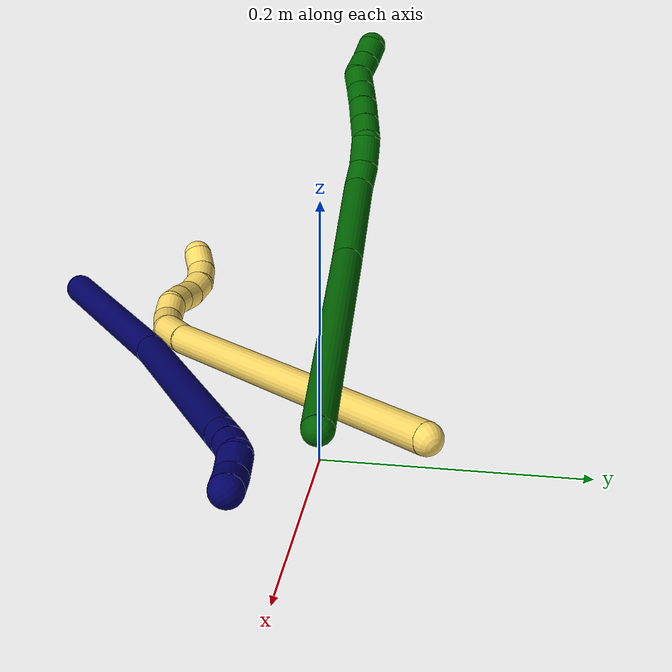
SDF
<sdf version="1.7">
 <world name="default">
  <model name="photoneo_s_sensor">
   <static>1</static>
   <pose>0 0 2 1.57079 1.57079 3.14159</pose>
   <link name="link">
    <inertial><mass>0.1</mass></inertial>
    <sensor name="sensor" type="depth">
     <update_rate>30</update_rate>
     <camera>
      <horizontal_fov>1.22</horizontal_fov>
      <image><width>1920</width><height>1200</height><format>B8G8R8</format></image>
      <clip><near>0.1</near><far>4</far></clip>
      <depth_camera><output>points</output></depth_camera>
     </camera>
     <plugin name="camera_plugin" filename="libgazebo_ros_depth_camera.so">
      <baseline>0.2</baseline>
      <alwaysOn>1</alwaysOn>
      <updateRate>0.0</updateRate>
      <cameraName>camera_ir</cameraName>
      <imageTopicName>/camera/color/image_raw</imageTopicName>
      <cameraInfoTopicName>/camera/color/camera_info</cameraInfoTopicName>
      <depthImageTopicName>/camera/depth/image_raw</depthImageTopicName>
      <depthImageCameraInfoTopicName>/camera/depth/camera_info</depthImageCameraInfoTopicName>
      <pointCloudTopicName>/camera/depth/points</pointCloudTopicName>
      <frameName>fr_optical</frameName>
      <pointCloudCutoff>0.1</pointCloudCutoff>
      <pointCloudCutoffMax>2.0</pointCloudCutoffMax>
      <distortionK1>0</distortionK1>
      <distortionK2>0</distortionK2>
      <distortionK3>0</distortionK3>
      <distortionT1>0</distortionT1>
      <distortionT2>0</distortionT2>
      <CxPrime>0</CxPrime>
      <Cx>0</Cx>
      <Cy>0</Cy>
      <focalLength>0</focalLength>
      <hackBaseline>0</hackBaseline>
     </plugin>
    </sensor>
   </link>
  </model>
  <model name="bin">
   <static>1</static>
   <link name="bottom">
    <collision name="collision-bottom">
     <pose>0 0 -0.01 0 -0 0</pose>
     <geometry><box><size>0.8 0.6 0.02</size></box></geometry>
     <surface>
      <friction><ode><mu>100</mu><mu2>100</mu2></ode></friction>
      <contact><collide_bitmask>65535</collide_bitmask></contact>
     </surface>
    </collision>
   </link>
   <link name="west_wall">
    <collision name="collision-west_wall">
     <pose>-0.41 0 0.1 0 -0 0</pose>
     <geometry><box><size>0.02 0.6 0.2</size></box></geometry>
     <surface>
      <friction><ode><mu>100</mu><mu2>100</mu2></ode></friction>
      <contact><collide_bitmask>65535</collide_bitmask></contact>
     </surface>
    </collision>
   </link>
   <link name="east_wall">
    <collision name="collision-east_wall">
     <pose>0.41 0 0.1 0 -0 0</pose>
     <geometry><box><size>0.02 0.6 0.2</size></box></geometry>
     <surface>
      <friction><ode><mu>100</mu><mu2>100</mu2></ode></friction>
      <contact><collide_bitmask>65535</collide_bitmask></contact>
     </surface>
    </collision>
   </link>
   <link name="south_wall">
    <collision name="collision-south_wall">
     <pose>0 -0.31 0.1 0 -0 0</pose>
     <geometry><box><size>0.8 0.02 0.2</size></box></geometry>
     <surface>
      <friction><ode><mu>100</mu><mu2>100</mu2></ode></friction>
      <contact><collide_bitmask>65535</collide_bitmask></contact>
     </surface>
    </collision>
   </link>
   <link name="north_wall">
    <collision name="collision-north_wall">
     <pose>0 0.31 0.1 0 -0 0</pose>
     <geometry><box><size>0.8 0.02 0.2</size></box></geometry>
     <surface>
      <friction><ode><mu>100</mu><mu2>100</mu2></ode></friction>
      <contact><collide_bitmask>65535</collide_bitmask></contact>
     </surface>
    </collision>
   </link>
  </model>
  <model name="5">
   <static>0</static>
   <link name="5">
    <collision name="collision-cylinder-e_1_1_4">
     <pose>-0.041084 -0.036061 0.147326 0.240053 -0.26452 -0.032087</pose>
     <geometry><cylinder><radius>0.0125</radius><length>0.314282</length></cylinder></geometry>
     <surface>
      <friction><ode><mu>1.16</mu><mu2>1.16</mu2><slip1>0</slip1><slip2>0</slip2></ode></friction>
      <contact><ode><kp>1e+06</kp><kd>1</kd><max_vel>0</max_vel><min_depth>0.001</min_depth></ode></contact>
     </surface>
    </collision>
    <visual name="visual-cylinder-e_1_1_4">
     <pose>-0.041084 -0.036061 0.147326 0.240053 -0.26452 -0.032087</pose>
     <geometry><cylinder><radius>0.0125</radius><length>0.314282</length></cylinder></geometry>
     <material><ambient>1 0.858824 0.4 1</ambient></material>
    </visual>
    <collision name="collision-cylinder-e_2_4_5">
     <pose>-0.087092 -0.073641 0.310829 0.093565 -0.294264 -0.013876</pose>
     <geometry><cylinder><radius>0.0125</radius><length>0.033956</length></cylinder></geometry>
     <surface>
      <friction><ode><mu>1.16</mu><mu2>1.16</mu2><slip1>0</slip1><slip2>0</slip2></ode></friction>
      <contact><ode><kp>1e+06</kp><kd>1</kd><max_vel>0</max_vel><min_depth>0.001</min_depth></ode></contact>
     </surface>
    </collision>
    <visual name="visual-cylinder-e_2_4_5">
     <pose>-0.087092 -0.073641 0.310829 0.093565 -0.294264 -0.013876</pose>
     <geometry><cylinder><radius>0.0125</radius><length>0.033956</length></cylinder></geometry>
     <material><ambient>1 0.858824 0.4 1</ambient></material>
    </visual>
    <collision name="collision-cylinder-e_3_5_6">
     <pose>-0.097602 -0.071286 0.338679 -0.32034 -0.426302 0.069905</pose>
     <geometry><cylinder><radius>0.0125</radius><length>0.027016</length></cylinder></geometry>
     <surface>
      <friction><ode><mu>1.16</mu><mu2>1.16</mu2><slip1>0</slip1><slip2>0</slip2></ode></friction>
      <contact><ode><kp>1e+06</kp><kd>1</kd><max_vel>0</max_vel><min_depth>0.001</min_depth></ode></contact>
     </surface>
    </collision>
    <visual name="visual-cylinder-e_3_5_6">
     <pose>-0.097602 -0.071286 0.338679 -0.32034 -0.426302 0.069905</pose>
     <geometry><cylinder><radius>0.0125</radius><length>0.027016</length></cylinder></geometry>
     <material><ambient>1 0.858824 0.4 1</ambient></material>
    </visual>
    <collision name="collision-cylinder-e_4_6_7">
     <pose>-0.103933 -0.061533 0.359097 -0.591991 -0.070619 0.021544</pose>
     <geometry><cylinder><radius>0.0125</radius><length>0.021127</length></cylinder></geometry>
     <surface>
      <friction><ode><mu>1.16</mu><mu2>1.16</mu2><slip1>0</slip1><slip2>0</slip2></ode></friction>
      <contact><ode><kp>1e+06</kp><kd>1</kd><max_vel>0</max_vel><min_depth>0.001</min_depth></ode></contact>
     </surface>
    </collision>
    <visual name="visual-cylinder-e_4_6_7">
     <pose>-0.103933 -0.061533 0.359097 -0.591991 -0.070619 0.021544</pose>
     <geometry><cylinder><radius>0.0125</radius><length>0.021127</length></cylinder></geometry>
     <material><ambient>1 0.858824 0.4 1</ambient></material>
    </visual>
    <collision name="collision-cylinder-e_5_7_8">
     <pose>-0.109672 -0.049777 0.374407 -0.730044 -0.515619 0.200849</pose>
     <geometry><cylinder><radius>0.0125</radius><length>0.020256</length></cylinder></geometry>
     <surface>
      <friction><ode><mu>1.16</mu><mu2>1.16</mu2><slip1>0</slip1><slip2>0</slip2></ode></friction>
      <contact><ode><kp>1e+06</kp><kd>1</kd><max_vel>0</max_vel><min_depth>0.001</min_depth></ode></contact>
     </surface>
    </collision>
    <visual name="visual-cylinder-e_5_7_8">
     <pose>-0.109672 -0.049777 0.374407 -0.730044 -0.515619 0.200849</pose>
     <geometry><cylinder><radius>0.0125</radius><length>0.020256</length></cylinder></geometry>
     <material><ambient>1 0.858824 0.4 1</ambient></material>
    </visual>
    <collision name="collision-cylinder-e_6_8_9">
     <pose>-0.120794 -0.036851 0.387889 -0.794939 -0.555348 0.238193</pose>
     <geometry><cylinder><radius>0.0125</radius><length>0.023246</length></cylinder></geometry>
     <surface>
      <friction><ode><mu>1.16</mu><mu2>1.16</mu2><slip1>0</slip1><slip2>0</slip2></ode></friction>
      <contact><ode><kp>1e+06</kp><kd>1</kd><max_vel>0</max_vel><min_depth>0.001</min_depth></ode></contact>
     </surface>
    </collision>
    <visual name="visual-cylinder-e_6_8_9">
     <pose>-0.120794 -0.036851 0.387889 -0.794939 -0.555348 0.238193</pose>
     <geometry><cylinder><radius>0.0125</radius><length>0.023246</length></cylinder></geometry>
     <material><ambient>1 0.858824 0.4 1</ambient></material>
    </visual>
    <collision name="collision-cylinder-e_7_9_10">
     <pose>-0.128969 -0.022302 0.401136 -0.869751 -0.205628 0.095786</pose>
     <geometry><cylinder><radius>0.0125</radius><length>0.020051</length></cylinder></geometry>
     <surface>
      <friction><ode><mu>1.16</mu><mu2>1.16</mu2><slip1>0</slip1><slip2>0</slip2></ode></friction>
      <contact><ode><kp>1e+06</kp><kd>1</kd><max_vel>0</max_vel><min_depth>0.001</min_depth></ode></contact>
     </surface>
    </collision>
    <visual name="visual-cylinder-e_7_9_10">
     <pose>-0.128969 -0.022302 0.401136 -0.869751 -0.205628 0.095786</pose>
     <geometry><cylinder><radius>0.0125</radius><length>0.020051</length></cylinder></geometry>
     <material><ambient>1 0.858824 0.4 1</ambient></material>
    </visual>
    <collision name="collision-cylinder-e_8_10_11">
     <pose>-0.132155 -0.01002 0.416181 -0.501844 -0.114086 0.029273</pose>
     <geometry><cylinder><radius>0.0125</radius><length>0.020011</length></cylinder></geometry>
     <surface>
      <friction><ode><mu>1.16</mu><mu2>1.16</mu2><slip1>0</slip1><slip2>0</slip2></ode></friction>
      <contact><ode><kp>1e+06</kp><kd>1</kd><max_vel>0</max_vel><min_depth>0.001</min_depth></ode></contact>
     </surface>
    </collision>
    <visual name="visual-cylinder-e_8_10_11">
     <pose>-0.132155 -0.01002 0.416181 -0.501844 -0.114086 0.029273</pose>
     <geometry><cylinder><radius>0.0125</radius><length>0.020011</length></cylinder></geometry>
     <material><ambient>1 0.858824 0.4 1</ambient></material>
    </visual>
    <collision name="collision-cylinder-e_9_11_2">
     <pose>-0.131054 -0.002077 0.434145 -0.329354 0.225269 -0.03759</pose>
     <geometry><cylinder><radius>0.0125</radius><length>0.020056</length></cylinder></geometry>
     <surface>
      <friction><ode><mu>1.16</mu><mu2>1.16</mu2><slip1>0</slip1><slip2>0</slip2></ode></friction>
      <contact><ode><kp>1e+06</kp><kd>1</kd><max_vel>0</max_vel><min_depth>0.001</min_depth></ode></contact>
     </surface>
    </collision>
    <visual name="visual-cylinder-e_9_11_2">
     <pose>-0.131054 -0.002077 0.434145 -0.329354 0.225269 -0.03759</pose>
     <geometry><cylinder><radius>0.0125</radius><length>0.020056</length></cylinder></geometry>
     <material><ambient>1 0.858824 0.4 1</ambient></material>
    </visual>
    <collision name="collision-sphere-2">
     <pose>-0.128814 0.001085 0.443394 0 -0 0</pose>
     <geometry><sphere><radius>0.0125</radius></sphere></geometry>
     <surface>
      <friction><ode><mu>1.16</mu><mu2>1.16</mu2><slip1>0</slip1><slip2>0</slip2></ode></friction>
      <contact><ode><kp>1e+06</kp><kd>1</kd><max_vel>0</max_vel><min_depth>0.001</min_depth></ode></contact>
     </surface>
    </collision>
    <visual name="visual-sphere-2">
     <pose>-0.128814 0.001085 0.443394 0 -0 0</pose>
     <geometry><sphere><radius>0.0125</radius></sphere></geometry>
     <material><ambient>1 0.858824 0.4 1</ambient></material>
    </visual>
    <collision name="collision-sphere-11">
     <pose>-0.133294 -0.005238 0.424895 0 -0 0</pose>
     <geometry><sphere><radius>0.0125</radius></sphere></geometry>
     <surface>
      <friction><ode><mu>1.16</mu><mu2>1.16</mu2><slip1>0</slip1><slip2>0</slip2></ode></friction>
      <contact><ode><kp>1e+06</kp><kd>1</kd><max_vel>0</max_vel><min_depth>0.001</min_depth></ode></contact>
     </surface>
    </collision>
    <visual name="visual-sphere-11">
     <pose>-0.133294 -0.005238 0.424895 0 -0 0</pose>
     <geometry><sphere><radius>0.0125</radius></sphere></geometry>
     <material><ambient>1 0.858824 0.4 1</ambient></material>
    </visual>
    <collision name="collision-sphere-10">
     <pose>-0.131016 -0.014802 0.407466 0 -0 0</pose>
     <geometry><sphere><radius>0.0125</radius></sphere></geometry>
     <surface>
      <friction><ode><mu>1.16</mu><mu2>1.16</mu2><slip1>0</slip1><slip2>0</slip2></ode></friction>
      <contact><ode><kp>1e+06</kp><kd>1</kd><max_vel>0</max_vel><min_depth>0.001</min_depth></ode></contact>
     </surface>
    </collision>
    <visual name="visual-sphere-10">
     <pose>-0.131016 -0.014802 0.407466 0 -0 0</pose>
     <geometry><sphere><radius>0.0125</radius></sphere></geometry>
     <material><ambient>1 0.858824 0.4 1</ambient></material>
    </visual>
    <collision name="collision-sphere-9">
     <pose>-0.126922 -0.029801 0.394805 0 -0 0</pose>
     <geometry><sphere><radius>0.0125</radius></sphere></geometry>
     <surface>
      <friction><ode><mu>1.16</mu><mu2>1.16</mu2><slip1>0</slip1><slip2>0</slip2></ode></friction>
      <contact><ode><kp>1e+06</kp><kd>1</kd><max_vel>0</max_vel><min_depth>0.001</min_depth></ode></contact>
     </surface>
    </collision>
    <visual name="visual-sphere-9">
     <pose>-0.126922 -0.029801 0.394805 0 -0 0</pose>
     <geometry><sphere><radius>0.0125</radius></sphere></geometry>
     <material><ambient>1 0.858824 0.4 1</ambient></material>
    </visual>
    <collision name="collision-sphere-4">
     <pose>-0.082168 -0.072123 0.294652 0 -0 0</pose>
     <geometry><sphere><radius>0.0125</radius></sphere></geometry>
     <surface>
      <friction><ode><mu>1.16</mu><mu2>1.16</mu2><slip1>0</slip1><slip2>0</slip2></ode></friction>
      <contact><ode><kp>1e+06</kp><kd>1</kd><max_vel>0</max_vel><min_depth>0.001</min_depth></ode></contact>
     </surface>
    </collision>
    <visual name="visual-sphere-4">
     <pose>-0.082168 -0.072123 0.294652 0 -0 0</pose>
     <geometry><sphere><radius>0.0125</radius></sphere></geometry>
     <material><ambient>1 0.858824 0.4 1</ambient></material>
    </visual>
    <collision name="collision-sphere-1">
     <geometry><sphere><radius>0.0125</radius></sphere></geometry>
     <surface>
      <friction><ode><mu>1.16</mu><mu2>1.16</mu2><slip1>0</slip1><slip2>0</slip2></ode></friction>
      <contact><ode><kp>1e+06</kp><kd>1</kd><max_vel>0</max_vel><min_depth>0.001</min_depth></ode></contact>
     </surface>
    </collision>
    <visual name="visual-sphere-1">
     <geometry><sphere><radius>0.0125</radius></sphere></geometry>
     <material><ambient>1 0.858824 0.4 1</ambient></material>
    </visual>
    <collision name="collision-sphere-8">
     <pose>-0.114666 -0.043901 0.380972 0 -0 0</pose>
     <geometry><sphere><radius>0.0125</radius></sphere></geometry>
     <surface>
      <friction><ode><mu>1.16</mu><mu2>1.16</mu2><slip1>0</slip1><slip2>0</slip2></ode></friction>
      <contact><ode><kp>1e+06</kp><kd>1</kd><max_vel>0</max_vel><min_depth>0.001</min_depth></ode></contact>
     </surface>
    </collision>
    <visual name="visual-sphere-8">
     <pose>-0.114666 -0.043901 0.380972 0 -0 0</pose>
     <geometry><sphere><radius>0.0125</radius></sphere></geometry>
     <material><ambient>1 0.858824 0.4 1</ambient></material>
    </visual>
    <collision name="collision-sphere-5">
     <pose>-0.092016 -0.075159 0.327006 0 -0 0</pose>
     <geometry><sphere><radius>0.0125</radius></sphere></geometry>
     <surface>
      <friction><ode><mu>1.16</mu><mu2>1.16</mu2><slip1>0</slip1><slip2>0</slip2></ode></friction>
      <contact><ode><kp>1e+06</kp><kd>1</kd><max_vel>0</max_vel><min_depth>0.001</min_depth></ode></contact>
     </surface>
    </collision>
    <visual name="visual-sphere-5">
     <pose>-0.092016 -0.075159 0.327006 0 -0 0</pose>
     <geometry><sphere><radius>0.0125</radius></sphere></geometry>
     <material><ambient>1 0.858824 0.4 1</ambient></material>
    </visual>
    <collision name="collision-sphere-6">
     <pose>-0.103187 -0.067413 0.350353 0 -0 0</pose>
     <geometry><sphere><radius>0.0125</radius></sphere></geometry>
     <surface>
      <friction><ode><mu>1.16</mu><mu2>1.16</mu2><slip1>0</slip1><slip2>0</slip2></ode></friction>
      <contact><ode><kp>1e+06</kp><kd>1</kd><max_vel>0</max_vel><min_depth>0.001</min_depth></ode></contact>
     </surface>
    </collision>
    <visual name="visual-sphere-6">
     <pose>-0.103187 -0.067413 0.350353 0 -0 0</pose>
     <geometry><sphere><radius>0.0125</radius></sphere></geometry>
     <material><ambient>1 0.858824 0.4 1</ambient></material>
    </visual>
    <collision name="collision-sphere-7">
     <pose>-0.104678 -0.055653 0.367841 0 -0 0</pose>
     <geometry><sphere><radius>0.0125</radius></sphere></geometry>
     <surface>
      <friction><ode><mu>1.16</mu><mu2>1.16</mu2><slip1>0</slip1><slip2>0</slip2></ode></friction>
      <contact><ode><kp>1e+06</kp><kd>1</kd><max_vel>0</max_vel><min_depth>0.001</min_depth></ode></contact>
     </surface>
    </collision>
    <visual name="visual-sphere-7">
     <pose>-0.104678 -0.055653 0.367841 0 -0 0</pose>
     <geometry><sphere><radius>0.0125</radius></sphere></geometry>
     <material><ambient>1 0.858824 0.4 1</ambient></material>
    </visual>
    <inertial>
     <pose>-0.06718 -0.039228 0.230544 0 -0 0</pose>
     <mass>0.5</mass>
     <inertia>
      <ixx>0.002433</ixx>
      <ixy>0</ixy>
      <ixz>0</ixz>
      <iyy>0.002464</iyy>
      <iyz>0</iyz>
      <izz>0.00131</izz>
     </inertia>
    </inertial>
   </link>
   <pose>0.051463 0.082438 0.048895 0.957792 -1.16488 -0.328761</pose>
  </model>
  <model name="6">
   <static>0</static>
   <link name="6">
    <collision name="collision-cylinder-e_1_1_4">
     <pose>-0.013665 0.008096 0.111513 -0.072472 -0.121613 0.004414</pose>
     <geometry><cylinder><radius>0.0125</radius><length>0.225278</length></cylinder></geometry>
     <surface>
      <friction><ode><mu>1.16</mu><mu2>1.16</mu2><slip1>0</slip1><slip2>0</slip2></ode></friction>
      <contact><ode><kp>1e+06</kp><kd>1</kd><max_vel>0</max_vel><min_depth>0.001</min_depth></ode></contact>
     </surface>
    </collision>
    <visual name="visual-cylinder-e_1_1_4">
     <pose>-0.013665 0.008096 0.111513 -0.072472 -0.121613 0.004414</pose>
     <geometry><cylinder><radius>0.0125</radius><length>0.225278</length></cylinder></geometry>
     <material><ambient>0 0.392157 0.003922 1</ambient></material>
    </visual>
    <collision name="collision-cylinder-e_2_4_5">
     <pose>-0.036998 0.015693 0.273254 0.009933 -0.190159 -0.000947</pose>
     <geometry><cylinder><radius>0.0125</radius><length>0.102304</length></cylinder></geometry>
     <surface>
      <friction><ode><mu>1.16</mu><mu2>1.16</mu2><slip1>0</slip1><slip2>0</slip2></ode></friction>
      <contact><ode><kp>1e+06</kp><kd>1</kd><max_vel>0</max_vel><min_depth>0.001</min_depth></ode></contact>
     </surface>
    </collision>
    <visual name="visual-cylinder-e_2_4_5">
     <pose>-0.036998 0.015693 0.273254 0.009933 -0.190159 -0.000947</pose>
     <geometry><cylinder><radius>0.0125</radius><length>0.102304</length></cylinder></geometry>
     <material><ambient>0 0.392157 0.003922 1</ambient></material>
    </visual>
    <collision name="collision-cylinder-e_3_5_6">
     <pose>-0.050308 0.011875 0.334585 0.290431 -0.304487 -0.044869</pose>
     <geometry><cylinder><radius>0.0125</radius><length>0.024295</length></cylinder></geometry>
     <surface>
      <friction><ode><mu>1.16</mu><mu2>1.16</mu2><slip1>0</slip1><slip2>0</slip2></ode></friction>
      <contact><ode><kp>1e+06</kp><kd>1</kd><max_vel>0</max_vel><min_depth>0.001</min_depth></ode></contact>
     </surface>
    </collision>
    <visual name="visual-cylinder-e_3_5_6">
     <pose>-0.050308 0.011875 0.334585 0.290431 -0.304487 -0.044869</pose>
     <geometry><cylinder><radius>0.0125</radius><length>0.024295</length></cylinder></geometry>
     <material><ambient>0 0.392157 0.003922 1</ambient></material>
    </visual>
    <collision name="collision-cylinder-e_4_6_7">
     <pose>-0.060915 0.00258 0.354415 0.600544 -0.582371 -0.185067</pose>
     <geometry><cylinder><radius>0.0125</radius><length>0.02533</length></cylinder></geometry>
     <surface>
      <friction><ode><mu>1.16</mu><mu2>1.16</mu2><slip1>0</slip1><slip2>0</slip2></ode></friction>
      <contact><ode><kp>1e+06</kp><kd>1</kd><max_vel>0</max_vel><min_depth>0.001</min_depth></ode></contact>
     </surface>
    </collision>
    <visual name="visual-cylinder-e_4_6_7">
     <pose>-0.060915 0.00258 0.354415 0.600544 -0.582371 -0.185067</pose>
     <geometry><cylinder><radius>0.0125</radius><length>0.02533</length></cylinder></geometry>
     <material><ambient>0 0.392157 0.003922 1</ambient></material>
    </visual>
    <collision name="collision-cylinder-e_5_7_8">
     <pose>-0.072363 -0.004051 0.372283 0.071366 -0.45485 -0.016523</pose>
     <geometry><cylinder><radius>0.0125</radius><length>0.020405</length></cylinder></geometry>
     <surface>
      <friction><ode><mu>1.16</mu><mu2>1.16</mu2><slip1>0</slip1><slip2>0</slip2></ode></friction>
      <contact><ode><kp>1e+06</kp><kd>1</kd><max_vel>0</max_vel><min_depth>0.001</min_depth></ode></contact>
     </surface>
    </collision>
    <visual name="visual-cylinder-e_5_7_8">
     <pose>-0.072363 -0.004051 0.372283 0.071366 -0.45485 -0.016523</pose>
     <geometry><cylinder><radius>0.0125</radius><length>0.020405</length></cylinder></geometry>
     <material><ambient>0 0.392157 0.003922 1</ambient></material>
    </visual>
    <collision name="collision-cylinder-e_6_8_9">
     <pose>-0.081649 -0.0054 0.39122 0.070874 -0.454917 -0.016411</pose>
     <geometry><cylinder><radius>0.0125</radius><length>0.021864</length></cylinder></geometry>
     <surface>
      <friction><ode><mu>1.16</mu><mu2>1.16</mu2><slip1>0</slip1><slip2>0</slip2></ode></friction>
      <contact><ode><kp>1e+06</kp><kd>1</kd><max_vel>0</max_vel><min_depth>0.001</min_depth></ode></contact>
     </surface>
    </collision>
    <visual name="visual-cylinder-e_6_8_9">
     <pose>-0.081649 -0.0054 0.39122 0.070874 -0.454917 -0.016411</pose>
     <geometry><cylinder><radius>0.0125</radius><length>0.021864</length></cylinder></geometry>
     <material><ambient>0 0.392157 0.003922 1</ambient></material>
    </visual>
    <collision name="collision-cylinder-e_7_9_10">
     <pose>-0.0908 -0.006216 0.410047 0.013337 -0.448649 -0.003043</pose>
     <geometry><cylinder><radius>0.0125</radius><length>0.020049</length></cylinder></geometry>
     <surface>
      <friction><ode><mu>1.16</mu><mu2>1.16</mu2><slip1>0</slip1><slip2>0</slip2></ode></friction>
      <contact><ode><kp>1e+06</kp><kd>1</kd><max_vel>0</max_vel><min_depth>0.001</min_depth></ode></contact>
     </surface>
    </collision>
    <visual name="visual-cylinder-e_7_9_10">
     <pose>-0.0908 -0.006216 0.410047 0.013337 -0.448649 -0.003043</pose>
     <geometry><cylinder><radius>0.0125</radius><length>0.020049</length></cylinder></geometry>
     <material><ambient>0 0.392157 0.003922 1</ambient></material>
    </visual>
    <collision name="collision-cylinder-e_8_10_11">
     <pose>-0.100018 -0.00664 0.428029 0.033934 -0.498058 -0.008631</pose>
     <geometry><cylinder><radius>0.0125</radius><length>0.020389</length></cylinder></geometry>
     <surface>
      <friction><ode><mu>1.16</mu><mu2>1.16</mu2><slip1>0</slip1><slip2>0</slip2></ode></friction>
      <contact><ode><kp>1e+06</kp><kd>1</kd><max_vel>0</max_vel><min_depth>0.001</min_depth></ode></contact>
     </surface>
    </collision>
    <visual name="visual-cylinder-e_8_10_11">
     <pose>-0.100018 -0.00664 0.428029 0.033934 -0.498058 -0.008631</pose>
     <geometry><cylinder><radius>0.0125</radius><length>0.020389</length></cylinder></geometry>
     <material><ambient>0 0.392157 0.003922 1</ambient></material>
    </visual>
    <collision name="collision-cylinder-e_9_11_12">
     <pose>-0.10606 -0.009958 0.446476 0.307338 -0.116994 -0.018141</pose>
     <geometry><cylinder><radius>0.0125</radius><length>0.020062</length></cylinder></geometry>
     <surface>
      <friction><ode><mu>1.16</mu><mu2>1.16</mu2><slip1>0</slip1><slip2>0</slip2></ode></friction>
      <contact><ode><kp>1e+06</kp><kd>1</kd><max_vel>0</max_vel><min_depth>0.001</min_depth></ode></contact>
     </surface>
    </collision>
    <visual name="visual-cylinder-e_9_11_12">
     <pose>-0.10606 -0.009958 0.446476 0.307338 -0.116994 -0.018141</pose>
     <geometry><cylinder><radius>0.0125</radius><length>0.020062</length></cylinder></geometry>
     <material><ambient>0 0.392157 0.003922 1</ambient></material>
    </visual>
    <collision name="collision-cylinder-e_10_12_2">
     <pose>-0.10936 -0.01671 0.465013 0.392127 -0.214356 -0.042732</pose>
     <geometry><cylinder><radius>0.0125</radius><length>0.020026</length></cylinder></geometry>
     <surface>
      <friction><ode><mu>1.16</mu><mu2>1.16</mu2><slip1>0</slip1><slip2>0</slip2></ode></friction>
      <contact><ode><kp>1e+06</kp><kd>1</kd><max_vel>0</max_vel><min_depth>0.001</min_depth></ode></contact>
     </surface>
    </collision>
    <visual name="visual-cylinder-e_10_12_2">
     <pose>-0.10936 -0.01671 0.465013 0.392127 -0.214356 -0.042732</pose>
     <geometry><cylinder><radius>0.0125</radius><length>0.020026</length></cylinder></geometry>
     <material><ambient>0 0.392157 0.003922 1</ambient></material>
    </visual>
    <collision name="collision-sphere-2">
     <pose>-0.11149 -0.020449 0.474054 0 -0 0</pose>
     <geometry><sphere><radius>0.0125</radius></sphere></geometry>
     <surface>
      <friction><ode><mu>1.16</mu><mu2>1.16</mu2><slip1>0</slip1><slip2>0</slip2></ode></friction>
      <contact><ode><kp>1e+06</kp><kd>1</kd><max_vel>0</max_vel><min_depth>0.001</min_depth></ode></contact>
     </surface>
    </collision>
    <visual name="visual-sphere-2">
     <pose>-0.11149 -0.020449 0.474054 0 -0 0</pose>
     <geometry><sphere><radius>0.0125</radius></sphere></geometry>
     <material><ambient>0 0.392157 0.003922 1</ambient></material>
    </visual>
    <collision name="collision-sphere-12">
     <pose>-0.10723 -0.012972 0.455972 0 -0 0</pose>
     <geometry><sphere><radius>0.0125</radius></sphere></geometry>
     <surface>
      <friction><ode><mu>1.16</mu><mu2>1.16</mu2><slip1>0</slip1><slip2>0</slip2></ode></friction>
      <contact><ode><kp>1e+06</kp><kd>1</kd><max_vel>0</max_vel><min_depth>0.001</min_depth></ode></contact>
     </surface>
    </collision>
    <visual name="visual-sphere-12">
     <pose>-0.10723 -0.012972 0.455972 0 -0 0</pose>
     <geometry><sphere><radius>0.0125</radius></sphere></geometry>
     <material><ambient>0 0.392157 0.003922 1</ambient></material>
    </visual>
    <collision name="collision-sphere-11">
     <pose>-0.104889 -0.006944 0.43698 0 -0 0</pose>
     <geometry><sphere><radius>0.0125</radius></sphere></geometry>
     <surface>
      <friction><ode><mu>1.16</mu><mu2>1.16</mu2><slip1>0</slip1><slip2>0</slip2></ode></friction>
      <contact><ode><kp>1e+06</kp><kd>1</kd><max_vel>0</max_vel><min_depth>0.001</min_depth></ode></contact>
     </surface>
    </collision>
    <visual name="visual-sphere-11">
     <pose>-0.104889 -0.006944 0.43698 0 -0 0</pose>
     <geometry><sphere><radius>0.0125</radius></sphere></geometry>
     <material><ambient>0 0.392157 0.003922 1</ambient></material>
    </visual>
    <collision name="collision-sphere-10">
     <pose>-0.095148 -0.006336 0.419078 0 -0 0</pose>
     <geometry><sphere><radius>0.0125</radius></sphere></geometry>
     <surface>
      <friction><ode><mu>1.16</mu><mu2>1.16</mu2><slip1>0</slip1><slip2>0</slip2></ode></friction>
      <contact><ode><kp>1e+06</kp><kd>1</kd><max_vel>0</max_vel><min_depth>0.001</min_depth></ode></contact>
     </surface>
    </collision>
    <visual name="visual-sphere-10">
     <pose>-0.095148 -0.006336 0.419078 0 -0 0</pose>
     <geometry><sphere><radius>0.0125</radius></sphere></geometry>
     <material><ambient>0 0.392157 0.003922 1</ambient></material>
    </visual>
    <collision name="collision-sphere-9">
     <pose>-0.086452 -0.006095 0.401015 0 -0 0</pose>
     <geometry><sphere><radius>0.0125</radius></sphere></geometry>
     <surface>
      <friction><ode><mu>1.16</mu><mu2>1.16</mu2><slip1>0</slip1><slip2>0</slip2></ode></friction>
      <contact><ode><kp>1e+06</kp><kd>1</kd><max_vel>0</max_vel><min_depth>0.001</min_depth></ode></contact>
     </surface>
    </collision>
    <visual name="visual-sphere-9">
     <pose>-0.086452 -0.006095 0.401015 0 -0 0</pose>
     <geometry><sphere><radius>0.0125</radius></sphere></geometry>
     <material><ambient>0 0.392157 0.003922 1</ambient></material>
    </visual>
    <collision name="collision-sphere-4">
     <pose>-0.027329 0.016192 0.223027 0 -0 0</pose>
     <geometry><sphere><radius>0.0125</radius></sphere></geometry>
     <surface>
      <friction><ode><mu>1.16</mu><mu2>1.16</mu2><slip1>0</slip1><slip2>0</slip2></ode></friction>
      <contact><ode><kp>1e+06</kp><kd>1</kd><max_vel>0</max_vel><min_depth>0.001</min_depth></ode></contact>
     </surface>
    </collision>
    <visual name="visual-sphere-4">
     <pose>-0.027329 0.016192 0.223027 0 -0 0</pose>
     <geometry><sphere><radius>0.0125</radius></sphere></geometry>
     <material><ambient>0 0.392157 0.003922 1</ambient></material>
    </visual>
    <collision name="collision-sphere-1">
     <geometry><sphere><radius>0.0125</radius></sphere></geometry>
     <surface>
      <friction><ode><mu>1.16</mu><mu2>1.16</mu2><slip1>0</slip1><slip2>0</slip2></ode></friction>
      <contact><ode><kp>1e+06</kp><kd>1</kd><max_vel>0</max_vel><min_depth>0.001</min_depth></ode></contact>
     </surface>
    </collision>
    <visual name="visual-sphere-1">
     <geometry><sphere><radius>0.0125</radius></sphere></geometry>
     <material><ambient>0 0.392157 0.003922 1</ambient></material>
    </visual>
    <collision name="collision-sphere-8">
     <pose>-0.076845 -0.004704 0.381424 0 -0 0</pose>
     <geometry><sphere><radius>0.0125</radius></sphere></geometry>
     <surface>
      <friction><ode><mu>1.16</mu><mu2>1.16</mu2><slip1>0</slip1><slip2>0</slip2></ode></friction>
      <contact><ode><kp>1e+06</kp><kd>1</kd><max_vel>0</max_vel><min_depth>0.001</min_depth></ode></contact>
     </surface>
    </collision>
    <visual name="visual-sphere-8">
     <pose>-0.076845 -0.004704 0.381424 0 -0 0</pose>
     <geometry><sphere><radius>0.0125</radius></sphere></geometry>
     <material><ambient>0 0.392157 0.003922 1</ambient></material>
    </visual>
    <collision name="collision-sphere-5">
     <pose>-0.046666 0.015194 0.323482 0 -0 0</pose>
     <geometry><sphere><radius>0.0125</radius></sphere></geometry>
     <surface>
      <friction><ode><mu>1.16</mu><mu2>1.16</mu2><slip1>0</slip1><slip2>0</slip2></ode></friction>
      <contact><ode><kp>1e+06</kp><kd>1</kd><max_vel>0</max_vel><min_depth>0.001</min_depth></ode></contact>
     </surface>
    </collision>
    <visual name="visual-sphere-5">
     <pose>-0.046666 0.015194 0.323482 0 -0 0</pose>
     <geometry><sphere><radius>0.0125</radius></sphere></geometry>
     <material><ambient>0 0.392157 0.003922 1</ambient></material>
    </visual>
    <collision name="collision-sphere-6">
     <pose>-0.05395 0.008557 0.345688 0 -0 0</pose>
     <geometry><sphere><radius>0.0125</radius></sphere></geometry>
     <surface>
      <friction><ode><mu>1.16</mu><mu2>1.16</mu2><slip1>0</slip1><slip2>0</slip2></ode></friction>
      <contact><ode><kp>1e+06</kp><kd>1</kd><max_vel>0</max_vel><min_depth>0.001</min_depth></ode></contact>
     </surface>
    </collision>
    <visual name="visual-sphere-6">
     <pose>-0.05395 0.008557 0.345688 0 -0 0</pose>
     <geometry><sphere><radius>0.0125</radius></sphere></geometry>
     <material><ambient>0 0.392157 0.003922 1</ambient></material>
    </visual>
    <collision name="collision-sphere-7">
     <pose>-0.067881 -0.003397 0.363141 0 -0 0</pose>
     <geometry><sphere><radius>0.0125</radius></sphere></geometry>
     <surface>
      <friction><ode><mu>1.16</mu><mu2>1.16</mu2><slip1>0</slip1><slip2>0</slip2></ode></friction>
      <contact><ode><kp>1e+06</kp><kd>1</kd><max_vel>0</max_vel><min_depth>0.001</min_depth></ode></contact>
     </surface>
    </collision>
    <visual name="visual-sphere-7">
     <pose>-0.067881 -0.003397 0.363141 0 -0 0</pose>
     <geometry><sphere><radius>0.0125</radius></sphere></geometry>
     <material><ambient>0 0.392157 0.003922 1</ambient></material>
    </visual>
    <inertial>
     <pose>-0.042135 0.005576 0.243099 0 -0 0</pose>
     <mass>0.5</mass>
     <inertia>
      <ixx>0.001053</ixx>
      <ixy>0</ixy>
      <ixz>0</ixz>
      <iyy>0.001067</iyy>
      <iyz>0</iyz>
      <izz>0.000111</izz>
     </inertia>
    </inertial>
   </link>
   <pose>0.047483 0.00596 0.048382 -1.33152 0.787697 1.64753</pose>
  </model>
  <model name="7">
   <static>0</static>
   <link name="7">
    <collision name="collision-cylinder-e_1_1_4">
     <pose>0.085614 0.036603 -0.014431 -1.94634 1.14001 -1.51077</pose>
     <geometry><cylinder><radius>0.0125</radius><length>0.188444</length></cylinder></geometry>
     <surface>
      <friction><ode><mu>1.16</mu><mu2>1.16</mu2><slip1>0</slip1><slip2>0</slip2></ode></friction>
      <contact><ode><kp>1e+06</kp><kd>1</kd><max_vel>0</max_vel><min_depth>0.001</min_depth></ode></contact>
     </surface>
    </collision>
    <visual name="visual-cylinder-e_1_1_4">
     <pose>0.085614 0.036603 -0.014431 -1.94634 1.14001 -1.51077</pose>
     <geometry><cylinder><radius>0.0125</radius><length>0.188444</length></cylinder></geometry>
     <material><ambient>0.003922 0 0.403922 1</ambient></material>
    </visual>
    <collision name="collision-cylinder-e_2_4_5">
     <pose>0.26923 0.132023 -0.037076 -1.70956 1.02599 -1.14915</pose>
     <geometry><cylinder><radius>0.0125</radius><length>0.229184</length></cylinder></geometry>
     <surface>
      <friction><ode><mu>1.16</mu><mu2>1.16</mu2><slip1>0</slip1><slip2>0</slip2></ode></friction>
      <contact><ode><kp>1e+06</kp><kd>1</kd><max_vel>0</max_vel><min_depth>0.001</min_depth></ode></contact>
     </surface>
    </collision>
    <visual name="visual-cylinder-e_2_4_5">
     <pose>0.26923 0.132023 -0.037076 -1.70956 1.02599 -1.14915</pose>
     <geometry><cylinder><radius>0.0125</radius><length>0.229184</length></cylinder></geometry>
     <material><ambient>0.003922 0 0.403922 1</ambient></material>
    </visual>
    <collision name="collision-cylinder-e_3_5_6">
     <pose>0.376218 0.196219 -0.046061 -1.71297 1.02688 -1.15324</pose>
     <geometry><cylinder><radius>0.0125</radius><length>0.021001</length></cylinder></geometry>
     <surface>
      <friction><ode><mu>1.16</mu><mu2>1.16</mu2><slip1>0</slip1><slip2>0</slip2></ode></friction>
      <contact><ode><kp>1e+06</kp><kd>1</kd><max_vel>0</max_vel><min_depth>0.001</min_depth></ode></contact>
     </surface>
    </collision>
    <visual name="visual-cylinder-e_3_5_6">
     <pose>0.376218 0.196219 -0.046061 -1.71297 1.02688 -1.15324</pose>
     <geometry><cylinder><radius>0.0125</radius><length>0.021001</length></cylinder></geometry>
     <material><ambient>0.003922 0 0.403922 1</ambient></material>
    </visual>
    <collision name="collision-cylinder-e_4_6_7">
     <pose>0.393967 0.206466 -0.046687 -1.54123 1.06359 -1.03793</pose>
     <geometry><cylinder><radius>0.0125</radius><length>0.020053</length></cylinder></geometry>
     <surface>
      <friction><ode><mu>1.16</mu><mu2>1.16</mu2><slip1>0</slip1><slip2>0</slip2></ode></friction>
      <contact><ode><kp>1e+06</kp><kd>1</kd><max_vel>0</max_vel><min_depth>0.001</min_depth></ode></contact>
     </surface>
    </collision>
    <visual name="visual-cylinder-e_4_6_7">
     <pose>0.393967 0.206466 -0.046687 -1.54123 1.06359 -1.03793</pose>
     <geometry><cylinder><radius>0.0125</radius><length>0.020053</length></cylinder></geometry>
     <material><ambient>0.003922 0 0.403922 1</ambient></material>
    </visual>
    <collision name="collision-cylinder-e_5_7_8">
     <pose>0.411297 0.214666 -0.041597 -0.592782 0.962647 -0.316338</pose>
     <geometry><cylinder><radius>0.0125</radius><length>0.020874</length></cylinder></geometry>
     <surface>
      <friction><ode><mu>1.16</mu><mu2>1.16</mu2><slip1>0</slip1><slip2>0</slip2></ode></friction>
      <contact><ode><kp>1e+06</kp><kd>1</kd><max_vel>0</max_vel><min_depth>0.001</min_depth></ode></contact>
     </surface>
    </collision>
    <visual name="visual-cylinder-e_5_7_8">
     <pose>0.411297 0.214666 -0.041597 -0.592782 0.962647 -0.316338</pose>
     <geometry><cylinder><radius>0.0125</radius><length>0.020874</length></cylinder></geometry>
     <material><ambient>0.003922 0 0.403922 1</ambient></material>
    </visual>
    <collision name="collision-cylinder-e_6_8_2">
     <pose>0.427333 0.224178 -0.033414 -1.08826 0.819465 -0.513948</pose>
     <geometry><cylinder><radius>0.0125</radius><length>0.020444</length></cylinder></geometry>
     <surface>
      <friction><ode><mu>1.16</mu><mu2>1.16</mu2><slip1>0</slip1><slip2>0</slip2></ode></friction>
      <contact><ode><kp>1e+06</kp><kd>1</kd><max_vel>0</max_vel><min_depth>0.001</min_depth></ode></contact>
     </surface>
    </collision>
    <visual name="visual-cylinder-e_6_8_2">
     <pose>0.427333 0.224178 -0.033414 -1.08826 0.819465 -0.513948</pose>
     <geometry><cylinder><radius>0.0125</radius><length>0.020444</length></cylinder></geometry>
     <material><ambient>0.003922 0 0.403922 1</ambient></material>
    </visual>
    <collision name="collision-sphere-2">
     <pose>0.434803 0.230359 -0.030176 0 -0 0</pose>
     <geometry><sphere><radius>0.0125</radius></sphere></geometry>
     <surface>
      <friction><ode><mu>1.16</mu><mu2>1.16</mu2><slip1>0</slip1><slip2>0</slip2></ode></friction>
      <contact><ode><kp>1e+06</kp><kd>1</kd><max_vel>0</max_vel><min_depth>0.001</min_depth></ode></contact>
     </surface>
    </collision>
    <visual name="visual-sphere-2">
     <pose>0.434803 0.230359 -0.030176 0 -0 0</pose>
     <geometry><sphere><radius>0.0125</radius></sphere></geometry>
     <material><ambient>0.003922 0 0.403922 1</ambient></material>
    </visual>
    <collision name="collision-sphere-4">
     <pose>0.171228 0.073207 -0.028862 0 -0 0</pose>
     <geometry><sphere><radius>0.0125</radius></sphere></geometry>
     <surface>
      <friction><ode><mu>1.16</mu><mu2>1.16</mu2><slip1>0</slip1><slip2>0</slip2></ode></friction>
      <contact><ode><kp>1e+06</kp><kd>1</kd><max_vel>0</max_vel><min_depth>0.001</min_depth></ode></contact>
     </surface>
    </collision>
    <visual name="visual-sphere-4">
     <pose>0.171228 0.073207 -0.028862 0 -0 0</pose>
     <geometry><sphere><radius>0.0125</radius></sphere></geometry>
     <material><ambient>0.003922 0 0.403922 1</ambient></material>
    </visual>
    <collision name="collision-sphere-1">
     <geometry><sphere><radius>0.0125</radius></sphere></geometry>
     <surface>
      <friction><ode><mu>1.16</mu><mu2>1.16</mu2><slip1>0</slip1><slip2>0</slip2></ode></friction>
      <contact><ode><kp>1e+06</kp><kd>1</kd><max_vel>0</max_vel><min_depth>0.001</min_depth></ode></contact>
     </surface>
    </collision>
    <visual name="visual-sphere-1">
     <geometry><sphere><radius>0.0125</radius></sphere></geometry>
     <material><ambient>0.003922 0 0.403922 1</ambient></material>
    </visual>
    <collision name="collision-sphere-8">
     <pose>0.419863 0.217997 -0.036651 0 -0 0</pose>
     <geometry><sphere><radius>0.0125</radius></sphere></geometry>
     <surface>
      <friction><ode><mu>1.16</mu><mu2>1.16</mu2><slip1>0</slip1><slip2>0</slip2></ode></friction>
      <contact><ode><kp>1e+06</kp><kd>1</kd><max_vel>0</max_vel><min_depth>0.001</min_depth></ode></contact>
     </surface>
    </collision>
    <visual name="visual-sphere-8">
     <pose>0.419863 0.217997 -0.036651 0 -0 0</pose>
     <geometry><sphere><radius>0.0125</radius></sphere></geometry>
     <material><ambient>0.003922 0 0.403922 1</ambient></material>
    </visual>
    <collision name="collision-sphere-5">
     <pose>0.367232 0.19084 -0.045291 0 -0 0</pose>
     <geometry><sphere><radius>0.0125</radius></sphere></geometry>
     <surface>
      <friction><ode><mu>1.16</mu><mu2>1.16</mu2><slip1>0</slip1><slip2>0</slip2></ode></friction>
      <contact><ode><kp>1e+06</kp><kd>1</kd><max_vel>0</max_vel><min_depth>0.001</min_depth></ode></contact>
     </surface>
    </collision>
    <visual name="visual-sphere-5">
     <pose>0.367232 0.19084 -0.045291 0 -0 0</pose>
     <geometry><sphere><radius>0.0125</radius></sphere></geometry>
     <material><ambient>0.003922 0 0.403922 1</ambient></material>
    </visual>
    <collision name="collision-sphere-6">
     <pose>0.385203 0.201598 -0.046831 0 -0 0</pose>
     <geometry><sphere><radius>0.0125</radius></sphere></geometry>
     <surface>
      <friction><ode><mu>1.16</mu><mu2>1.16</mu2><slip1>0</slip1><slip2>0</slip2></ode></friction>
      <contact><ode><kp>1e+06</kp><kd>1</kd><max_vel>0</max_vel><min_depth>0.001</min_depth></ode></contact>
     </surface>
    </collision>
    <visual name="visual-sphere-6">
     <pose>0.385203 0.201598 -0.046831 0 -0 0</pose>
     <geometry><sphere><radius>0.0125</radius></sphere></geometry>
     <material><ambient>0.003922 0 0.403922 1</ambient></material>
    </visual>
    <collision name="collision-sphere-7">
     <pose>0.402732 0.211334 -0.046543 0 -0 0</pose>
     <geometry><sphere><radius>0.0125</radius></sphere></geometry>
     <surface>
      <friction><ode><mu>1.16</mu><mu2>1.16</mu2><slip1>0</slip1><slip2>0</slip2></ode></friction>
      <contact><ode><kp>1e+06</kp><kd>1</kd><max_vel>0</max_vel><min_depth>0.001</min_depth></ode></contact>
     </surface>
    </collision>
    <visual name="visual-sphere-7">
     <pose>0.402732 0.211334 -0.046543 0 -0 0</pose>
     <geometry><sphere><radius>0.0125</radius></sphere></geometry>
     <material><ambient>0.003922 0 0.403922 1</ambient></material>
    </visual>
    <inertial>
     <pose>0.221919 0.108961 -0.029343 0 -0 0</pose>
     <mass>0.5</mass>
     <inertia>
      <ixx>-0.000451</ixx>
      <ixy>0</ixy>
      <ixz>0</ixz>
      <iyy>0.000496</iyy>
      <iyz>0</iyz>
      <izz>-0.002128</izz>
     </inertia>
    </inertial>
   </link>
   <pose>-0.279533 -0.266217 0.012291 2.1533 0.362409 0.694146</pose>
  </model>
 </world>
</sdf>
